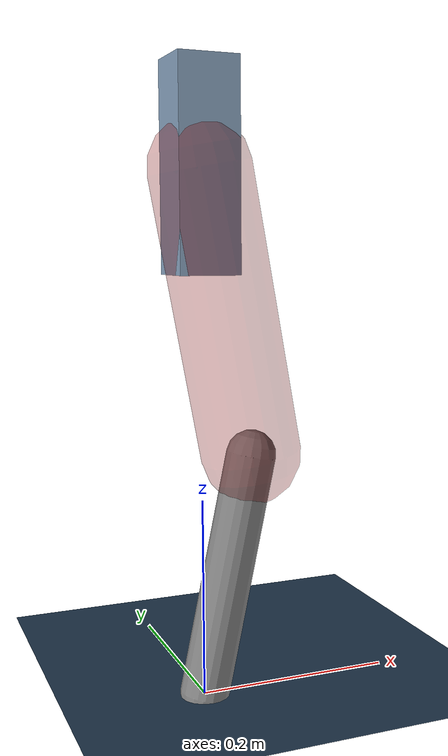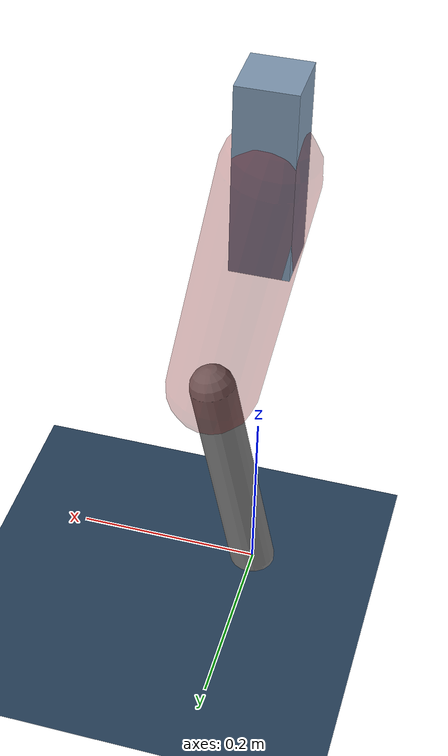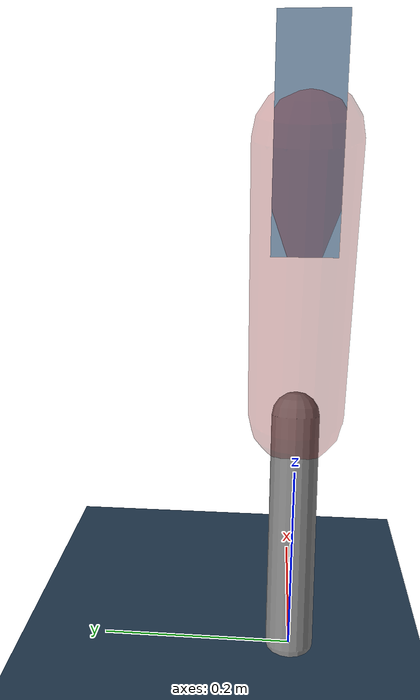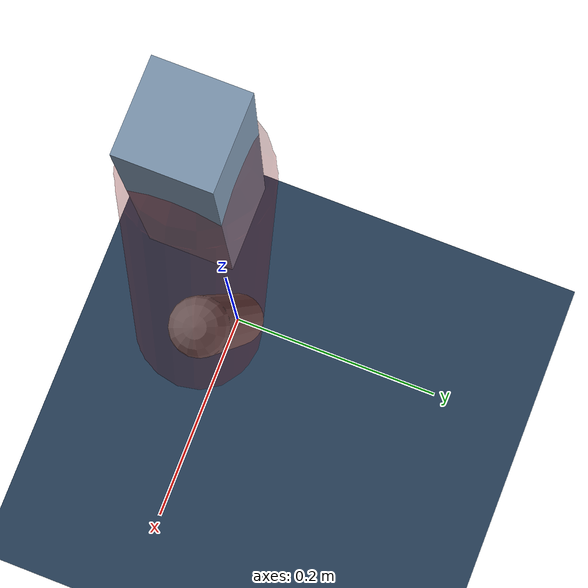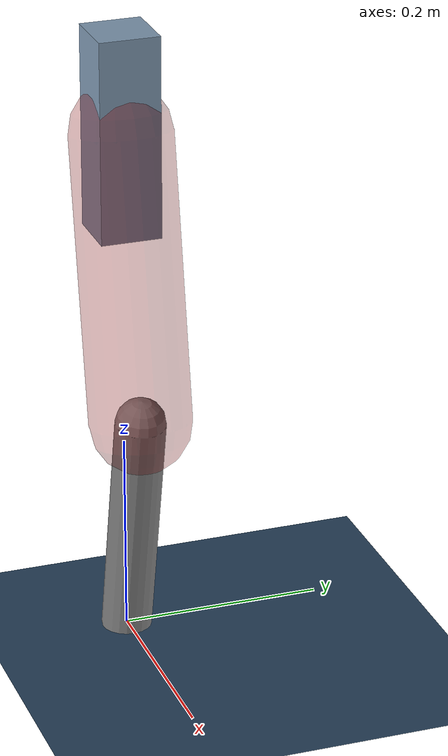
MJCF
<mujoco model="Hopper2D">
	<compiler inertiafromgeom="true" angle="radian" />
	<option timestep="0.001" integrator="implicit" cone="elliptic" solver="Newton" tolerance="1e-10" />

	<default>
		<geom contype="1" conaffinity="1" condim="3" friction="2 0.005 0.0001" solref="0.005 1" />
		<joint limited="true" damping="0.1" />
	</default>

	<asset>
		<texture name="skybox" type="skybox" builtin="gradient" rgb1=".4 .6 .8" rgb2="0 0 0" width="800" height="800" />
		<texture name="grid" type="2d" builtin="checker" rgb1=".1 .2 .3" rgb2=".2 .3 .4" width="300" height="300" mark="edge" markrgb=".2 .3 .4" />
		<material name="ground" texture="grid" texrepeat="1 1" texuniform="true" reflectance="0.1" />
		<material name="leg" rgba="0.5 0.6 0.7 1" />
	</asset>

	<worldbody>

		<geom name="floor" type="plane" size="5 5 0.25" material="ground" />

		<light directional="false" diffuse="0.8 0.8 0.8" specular="0.3 0.3 0.3" pos="0 0 2" dir="0 0 -1" />
		<light mode="targetbodycom" target="base" directional="false" diffuse="0.8 0.8 0.8" specular="0.3 0.3 0.3" pos="0 0 2" dir="0 0 -1" />

		<camera name="fixed" pos="0 -2 1" xyaxes="1 0 0 0 0 1" />
		<camera name="tracking" mode="trackcom" pos="0 -3 1" />

		<body name="root" pos="0 0 0.5211863055683368">
			<joint name="slide_x" type="slide" axis="1 0 0" range="-100 100" />
			<joint name="slide_z" type="slide" axis="0 0 1" range="0 10" />

			<body name="base" pos="0 0 0">
				<geom name="torso" type="box" size="0.03 0.03 0.1" mass="3.8150000000000004" material="leg" />

				<body name="link1" pos="0 0 0" euler="0 1.3889567609654525 0">
					<joint type="hinge" axis="0 -1 0" pos="0 0 0" name="hinge1" limited="true" range="-3.14 3.14" stiffness="0" damping="0.1" />
					<geom name="thigh" type="capsule" fromto="0 0 0 0.28300298834032067 0 0" size="0.05" rgba="0.5 0 0 0.3" mass="0.943108068518866" />

					<body name="link2" pos="0.28300298834032067 0 0" euler="0 0.3895402163319689 0">
						<joint type="hinge" axis="0 -1 0" pos="0 0 0" name="hinge2" limited="true" range="-3.14 3.14" stiffness="0" damping="0.1" />
						<geom name="shank" type="capsule" fromto="0 0 0 0.24818331722801618 0 0" size="0.025" mass="0.4410466537824129" />

					</body>
				</body>
			</body>
		</body>
	</worldbody>

	<actuator>
		<motor name="torque1" joint="hinge1" ctrlrange="-258.79222267502195 258.79222267502195" ctrllimited="true" gear="1" />
		<motor name="torque2" joint="hinge2" ctrlrange="-109.24108040150543 109.24108040150543" ctrllimited="true" gear="1" />
	</actuator>
</mujoco>
